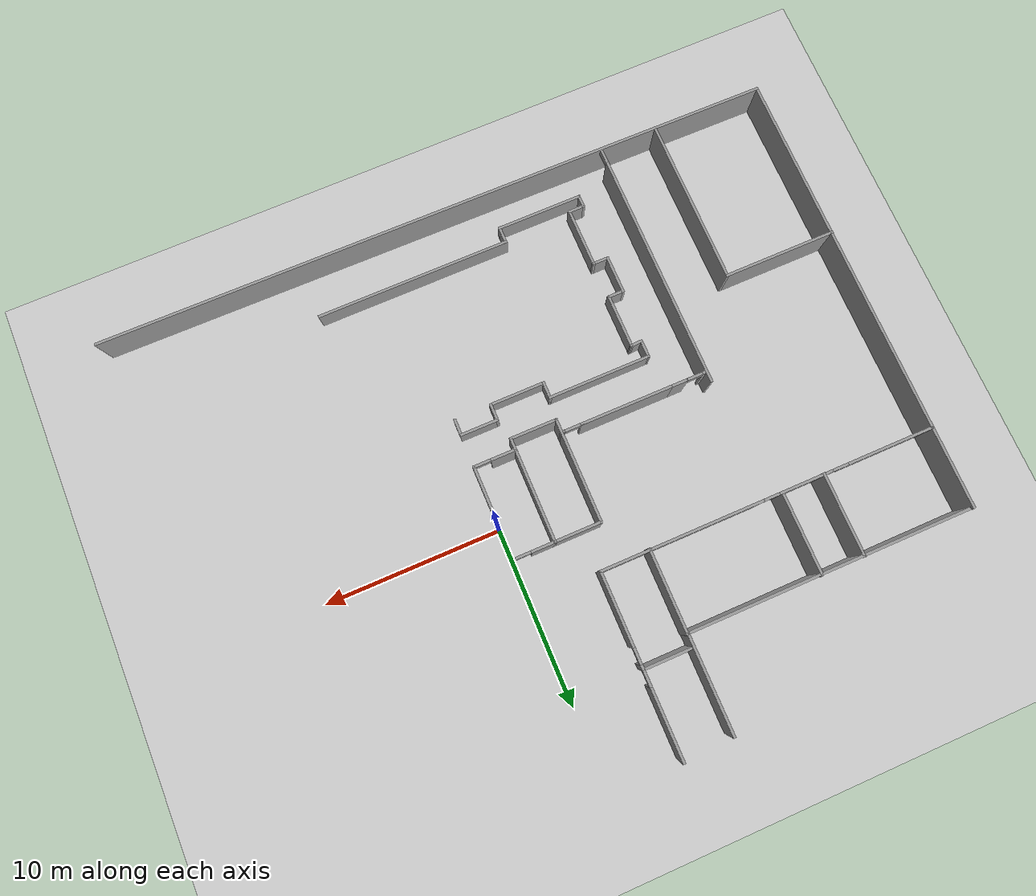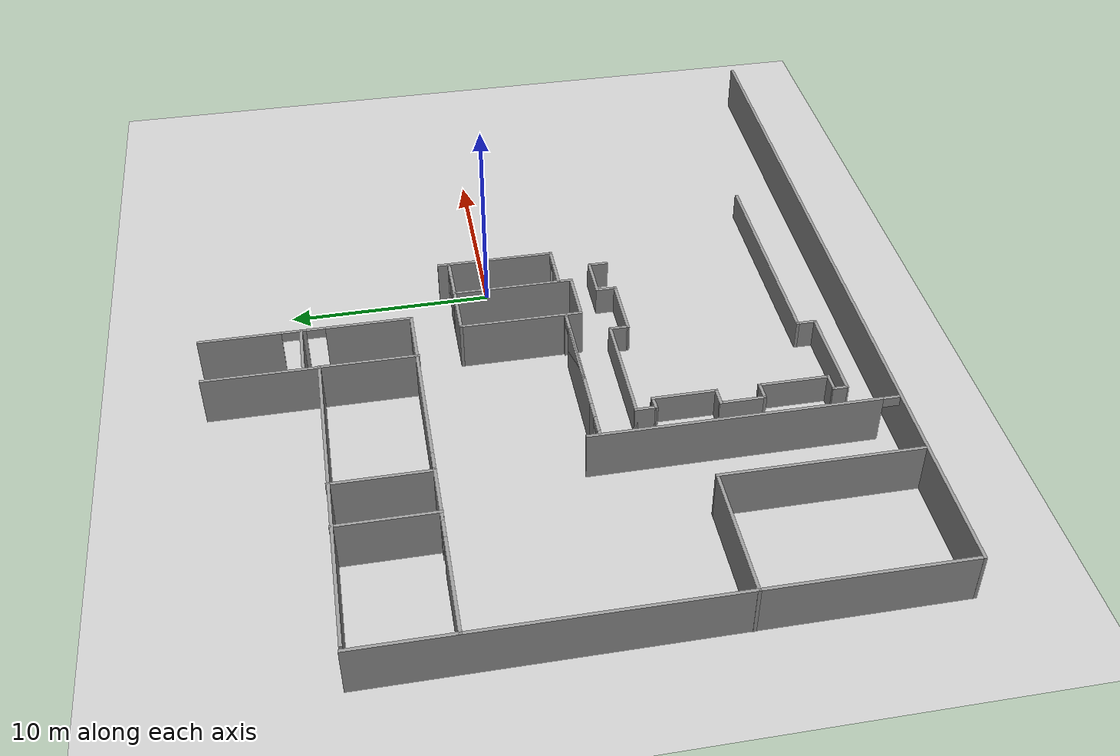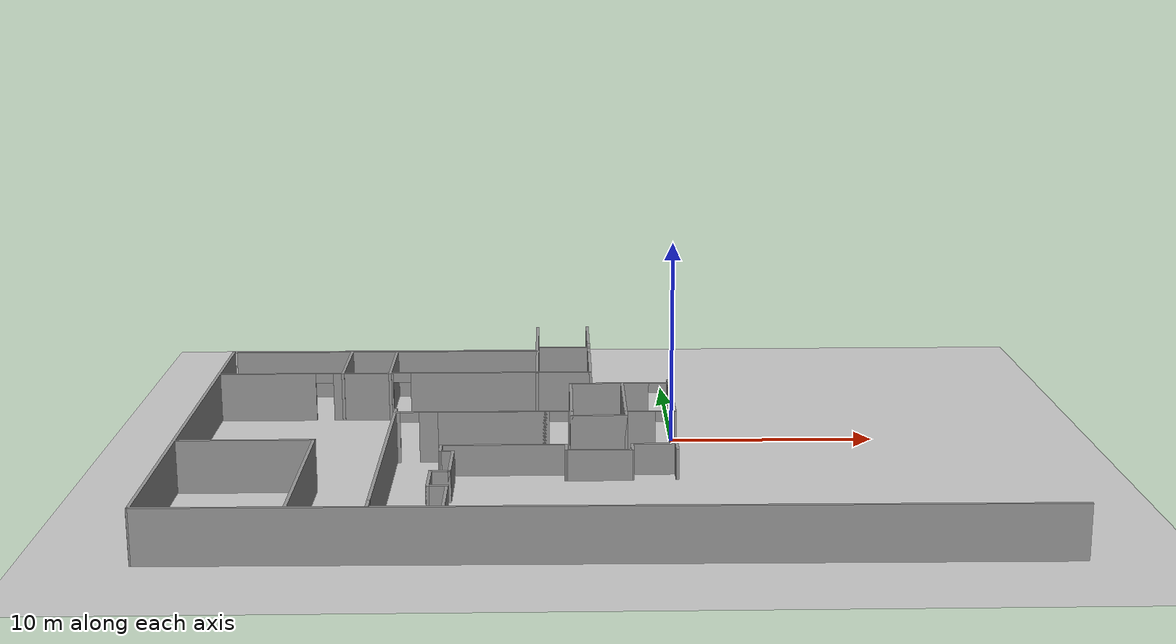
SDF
<sdf version="1.6">
 <world name="default">
  <model name="ground_plane">
   <static>1</static>
   <link name="link">
    <collision name="collision">
     <geometry><plane><normal>0 0 1</normal><size>100 100</size></plane></geometry>
     <surface><friction><ode><mu>100</mu><mu2>50</mu2></ode></friction></surface>
    </collision>
    <visual name="visual">
     <cast_shadows>0</cast_shadows>
     <geometry><plane><normal>0 0 1</normal><size>100 100</size></plane></geometry>
     <material>
      <script><uri>file://media/materials/scripts/gazebo.material</uri><name>Gazebo/Grey</name></script>
     </material>
    </visual>
   </link>
  </model>
  <model name="REPF">
   <pose>-1.32849 -1.57577 0 0 -0 0</pose>
   <link name="Wall_291">
    <collision name="Wall_291_Collision">
     <geometry><box><size>26 0.15 2.5</size></box></geometry>
     <pose>0 0 1.25 0 -0 0</pose>
    </collision>
    <visual name="Wall_291_Visual">
     <pose>0 0 1.25 0 -0 0</pose>
     <geometry><box><size>26 0.15 2.5</size></box></geometry>
     <material>
      <script><uri>file://media/materials/scripts/gazebo.material</uri><name>Gazebo/Grey</name></script>
      <ambient>1 1 1 1</ambient>
     </material>
    </visual>
    <pose>-21.7531 -2.59206 0 0 0 -1.5708</pose>
   </link>
   <link name="Wall_292">
    <collision name="Wall_292_Collision">
     <geometry><box><size>39.3304 0.15 2.5</size></box></geometry>
     <pose>0 0 1.25 0 -0 0</pose>
    </collision>
    <visual name="Wall_292_Visual">
     <pose>0 0 1.25 0 -0 0</pose>
     <geometry><box><size>39.3304 0.15 2.5</size></box></geometry>
     <material>
      <script><uri>file://media/materials/scripts/gazebo.material</uri><name>Gazebo/Grey</name></script>
      <ambient>1 1 1 1</ambient>
     </material>
    </visual>
    <pose>-2.16853 -15.6825 0 0 0 -0.008444</pose>
   </link>
   <link name="Wall_299">
    <collision name="Wall_299_Collision">
     <geometry><box><size>5.55237 0.15 2.5</size></box></geometry>
     <pose>0 0 1.25 0 -0 0</pose>
    </collision>
    <visual name="Wall_299_Visual">
     <pose>0 0 1.25 0 -0 0</pose>
     <geometry><box><size>5.55237 0.15 2.5</size></box></geometry>
     <material>
      <script><uri>file://media/materials/scripts/gazebo.material</uri><name>Gazebo/Grey</name></script>
      <ambient>1 1 1 1</ambient>
     </material>
    </visual>
    <pose>-5.42804 13.0009 0 0 0 -1.57043</pose>
   </link>
   <link name="Wall_300">
    <collision name="Wall_300_Collision">
     <geometry><box><size>16.25 0.15 2.5</size></box></geometry>
     <pose>0 0 1.25 0 -0 0</pose>
    </collision>
    <visual name="Wall_300_Visual">
     <pose>0 0 1.25 0 -0 0</pose>
     <geometry><box><size>16.25 0.15 2.5</size></box></geometry>
     <material>
      <script><uri>file://media/materials/scripts/gazebo.material</uri><name>Gazebo/Grey</name></script>
      <ambient>1 1 1 1</ambient>
     </material>
    </visual>
    <pose>-13.4469 10.2997 0 0 -0 3.14159</pose>
   </link>
   <link name="Wall_302">
    <pose>-2.62455 10.7985 0 0 0 -1.5708</pose>
    <visual name="Wall_302_Visual_0">
     <pose>-3.14213 0 1.25 0 -0 0</pose>
     <geometry><box><size>3.96575 0.15 2.5</size></box></geometry>
     <material>
      <script><uri>file://media/materials/scripts/gazebo.material</uri><name>Gazebo/Grey</name></script>
      <ambient>1 1 1 1</ambient>
     </material>
    </visual>
    <collision name="Wall_302_Collision_0">
     <geometry><box><size>3.96575 0.15 2.5</size></box></geometry>
     <pose>-3.14213 0 1.25 0 -0 0</pose>
    </collision>
    <visual name="Wall_302_Visual_1">
     <pose>-0.118157 0 1.25 0 -0 0</pose>
     <geometry><box><size>0.282192 0.15 2.5</size></box></geometry>
     <material>
      <script><uri>file://media/materials/scripts/gazebo.material</uri><name>Gazebo/Grey</name></script>
      <ambient>1 1 1 1</ambient>
     </material>
    </visual>
    <collision name="Wall_302_Collision_1">
     <geometry><box><size>0.282192 0.15 2.5</size></box></geometry>
     <pose>-0.118157 0 1.25 0 -0 0</pose>
    </collision>
    <visual name="Wall_302_Visual_2">
     <pose>3.02397 0 1.25 0 -0 0</pose>
     <geometry><box><size>4.20206 0.15 2.5</size></box></geometry>
     <material>
      <script><uri>file://media/materials/scripts/gazebo.material</uri><name>Gazebo/Grey</name></script>
      <ambient>1 1 1 1</ambient>
     </material>
    </visual>
    <collision name="Wall_302_Collision_2">
     <geometry><box><size>4.20206 0.15 2.5</size></box></geometry>
     <pose>3.02397 0 1.25 0 -0 0</pose>
    </collision>
    <visual name="Wall_302_Visual_3">
     <pose>-0.709253 0 2.25 0 -0 0</pose>
     <geometry><box><size>0.9 0.15 0.5</size></box></geometry>
     <material>
      <script><uri>file://media/materials/scripts/gazebo.material</uri><name>Gazebo/Grey</name></script>
      <ambient>1 1 1 1</ambient>
     </material>
    </visual>
    <collision name="Wall_302_Collision_3">
     <geometry><box><size>0.9 0.15 0.5</size></box></geometry>
     <pose>-0.709253 0 2.25 0 -0 0</pose>
    </collision>
    <visual name="Wall_302_Visual_4">
     <pose>0.472939 0 2.25 0 -0 0</pose>
     <geometry><box><size>0.9 0.15 0.5</size></box></geometry>
     <material>
      <script><uri>file://media/materials/scripts/gazebo.material</uri><name>Gazebo/Grey</name></script>
      <ambient>1 1 1 1</ambient>
     </material>
    </visual>
    <collision name="Wall_302_Collision_4">
     <geometry><box><size>0.9 0.15 0.5</size></box></geometry>
     <pose>0.472939 0 2.25 0 -0 0</pose>
    </collision>
   </link>
   <link name="Wall_303">
    <pose>-12.1746 5.74854 0 0 -0 3.14159</pose>
    <visual name="Wall_303_Visual_0">
     <pose>-4.94527 0 1.25 0 -0 0</pose>
     <geometry><box><size>9.35946 0.15 2.5</size></box></geometry>
     <material>
      <script><uri>file://media/materials/scripts/gazebo.material</uri><name>Gazebo/Grey</name></script>
      <ambient>1 1 1 1</ambient>
     </material>
    </visual>
    <collision name="Wall_303_Collision_0">
     <geometry><box><size>9.35946 0.15 2.5</size></box></geometry>
     <pose>-4.94527 0 1.25 0 -0 0</pose>
    </collision>
    <visual name="Wall_303_Visual_1">
     <pose>2.17509 0 1.25 0 -0 0</pose>
     <geometry><box><size>3.08126 0.15 2.5</size></box></geometry>
     <material>
      <script><uri>file://media/materials/scripts/gazebo.material</uri><name>Gazebo/Grey</name></script>
      <ambient>1 1 1 1</ambient>
     </material>
    </visual>
    <collision name="Wall_303_Collision_1">
     <geometry><box><size>3.08126 0.15 2.5</size></box></geometry>
     <pose>2.17509 0 1.25 0 -0 0</pose>
    </collision>
    <visual name="Wall_303_Visual_2">
     <pose>7.12036 0 1.25 0 -0 0</pose>
     <geometry><box><size>5.00928 0.15 2.5</size></box></geometry>
     <material>
      <script><uri>file://media/materials/scripts/gazebo.material</uri><name>Gazebo/Grey</name></script>
      <ambient>1 1 1 1</ambient>
     </material>
    </visual>
    <collision name="Wall_303_Collision_2">
     <geometry><box><size>5.00928 0.15 2.5</size></box></geometry>
     <pose>7.12036 0 1.25 0 -0 0</pose>
    </collision>
    <visual name="Wall_303_Visual_3">
     <pose>0.18446 0 2.25 0 -0 0</pose>
     <geometry><box><size>0.9 0.15 0.5</size></box></geometry>
     <material>
      <script><uri>file://media/materials/scripts/gazebo.material</uri><name>Gazebo/Grey</name></script>
      <ambient>1 1 1 1</ambient>
     </material>
    </visual>
    <collision name="Wall_303_Collision_3">
     <geometry><box><size>0.9 0.15 0.5</size></box></geometry>
     <pose>0.18446 0 2.25 0 -0 0</pose>
    </collision>
    <visual name="Wall_303_Visual_4">
     <pose>4.16572 0 2.25 0 -0 0</pose>
     <geometry><box><size>0.9 0.15 0.5</size></box></geometry>
     <material>
      <script><uri>file://media/materials/scripts/gazebo.material</uri><name>Gazebo/Grey</name></script>
      <ambient>1 1 1 1</ambient>
     </material>
    </visual>
    <collision name="Wall_303_Collision_4">
     <geometry><box><size>0.9 0.15 0.5</size></box></geometry>
     <pose>4.16572 0 2.25 0 -0 0</pose>
    </collision>
   </link>
   <link name="Wall_305">
    <collision name="Wall_305_Collision">
     <geometry><box><size>4.75 0.15 2.5</size></box></geometry>
     <pose>0 0 1.25 0 -0 0</pose>
    </collision>
    <visual name="Wall_305_Visual">
     <pose>0 0 1.25 0 -0 0</pose>
     <geometry><box><size>4.75 0.15 2.5</size></box></geometry>
     <material>
      <script><uri>file://media/materials/scripts/gazebo.material</uri><name>Gazebo/Grey</name></script>
      <ambient>1 1 1 1</ambient>
     </material>
    </visual>
    <pose>-5.39685 7.99971 0 0 0 -1.5708</pose>
   </link>
   <link name="Wall_307">
    <collision name="Wall_307_Collision">
     <geometry><box><size>2.75 0.15 2.5</size></box></geometry>
     <pose>0 0 1.25 0 -0 0</pose>
    </collision>
    <visual name="Wall_307_Visual">
     <pose>0 0 1.25 0 -0 0</pose>
     <geometry><box><size>2.75 0.15 2.5</size></box></geometry>
     <material>
      <script><uri>file://media/materials/scripts/gazebo.material</uri><name>Gazebo/Grey</name></script>
      <ambient>1 1 1 1</ambient>
     </material>
    </visual>
    <pose>-3.94634 11.0349 0 0 -0 0</pose>
   </link>
   <link name="Wall_331">
    <collision name="Wall_331_Collision">
     <geometry><box><size>6.5 0.15 2.5</size></box></geometry>
     <pose>0 0 1.25 0 -0 0</pose>
    </collision>
    <visual name="Wall_331_Visual">
     <pose>0 0 1.25 0 -0 0</pose>
     <geometry><box><size>6.5 0.15 2.5</size></box></geometry>
     <material>
      <script><uri>file://media/materials/scripts/gazebo.material</uri><name>Gazebo/Grey</name></script>
      <ambient>1 1 1 1</ambient>
     </material>
    </visual>
    <pose>-18.596 -6.09631 0 0 -0 0</pose>
   </link>
   <link name="Wall_332">
    <collision name="Wall_332_Collision">
     <geometry><box><size>9.5 0.15 2.5</size></box></geometry>
     <pose>0 0 1.25 0 -0 0</pose>
    </collision>
    <visual name="Wall_332_Visual">
     <pose>0 0 1.25 0 -0 0</pose>
     <geometry><box><size>9.5 0.15 2.5</size></box></geometry>
     <material>
      <script><uri>file://media/materials/scripts/gazebo.material</uri><name>Gazebo/Grey</name></script>
      <ambient>1 1 1 1</ambient>
     </material>
    </visual>
    <pose>-15.421 -10.7713 0 0 0 -1.5708</pose>
   </link>
   <link name="Wall_334">
    <pose>-12.1022 -8.27314 0 0 0 -1.5708</pose>
    <visual name="Wall_334_Visual_0">
     <pose>-0.398977 0 1.25 0 -0 0</pose>
     <geometry><box><size>13.702 0.15 2.5</size></box></geometry>
     <material>
      <script><uri>file://media/materials/scripts/gazebo.material</uri><name>Gazebo/Grey</name></script>
      <ambient>1 1 1 1</ambient>
     </material>
    </visual>
    <collision name="Wall_334_Collision_0">
     <geometry><box><size>13.702 0.15 2.5</size></box></geometry>
     <pose>-0.398977 0 1.25 0 -0 0</pose>
    </collision>
    <visual name="Wall_334_Visual_1">
     <pose>6.85102 0 2.25 0 -0 0</pose>
     <geometry><box><size>0.797955 0.15 0.5</size></box></geometry>
     <material>
      <script><uri>file://media/materials/scripts/gazebo.material</uri><name>Gazebo/Grey</name></script>
      <ambient>1 1 1 1</ambient>
     </material>
    </visual>
    <collision name="Wall_334_Collision_1">
     <geometry><box><size>0.797955 0.15 0.5</size></box></geometry>
     <pose>6.85102 0 2.25 0 -0 0</pose>
    </collision>
   </link>
   <link name="Wall_336">
    <pose>-7.83845 -1.65312 0 0 -0 0</pose>
    <visual name="Wall_336_Visual_0">
     <pose>-4.13254 0 1.25 0 -0 0</pose>
     <geometry><box><size>0.234928 0.15 2.5</size></box></geometry>
     <material>
      <script><uri>file://media/materials/scripts/gazebo.material</uri><name>Gazebo/Grey</name></script>
      <ambient>1 1 1 1</ambient>
     </material>
    </visual>
    <collision name="Wall_336_Collision_0">
     <geometry><box><size>0.234928 0.15 2.5</size></box></geometry>
     <pose>-4.13254 0 1.25 0 -0 0</pose>
    </collision>
    <visual name="Wall_336_Visual_1">
     <pose>-0.006322 0 1.25 0 -0 0</pose>
     <geometry><box><size>6.2175 0.15 2.5</size></box></geometry>
     <material>
      <script><uri>file://media/materials/scripts/gazebo.material</uri><name>Gazebo/Grey</name></script>
      <ambient>1 1 1 1</ambient>
     </material>
    </visual>
    <collision name="Wall_336_Collision_1">
     <geometry><box><size>6.2175 0.15 2.5</size></box></geometry>
     <pose>-0.006322 0 1.25 0 -0 0</pose>
    </collision>
    <visual name="Wall_336_Visual_2">
     <pose>0.440485 0 1.25 0 -0 0</pose>
     <geometry><box><size>5.32388 0.15 2.5</size></box></geometry>
     <material>
      <script><uri>file://media/materials/scripts/gazebo.material</uri><name>Gazebo/Grey</name></script>
      <ambient>1 1 1 1</ambient>
     </material>
    </visual>
    <collision name="Wall_336_Collision_2">
     <geometry><box><size>5.32388 0.15 2.5</size></box></geometry>
     <pose>0.440485 0 1.25 0 -0 0</pose>
    </collision>
    <visual name="Wall_336_Visual_3">
     <pose>4.12621 0 1.25 0 -0 0</pose>
     <geometry><box><size>0.247573 0.15 2.5</size></box></geometry>
     <material>
      <script><uri>file://media/materials/scripts/gazebo.material</uri><name>Gazebo/Grey</name></script>
      <ambient>1 1 1 1</ambient>
     </material>
    </visual>
    <collision name="Wall_336_Collision_3">
     <geometry><box><size>0.247573 0.15 2.5</size></box></geometry>
     <pose>4.12621 0 1.25 0 -0 0</pose>
    </collision>
    <visual name="Wall_336_Visual_4">
     <pose>-3.56826 0 2.25 0 -0 0</pose>
     <geometry><box><size>0.893616 0.15 0.5</size></box></geometry>
     <material>
      <script><uri>file://media/materials/scripts/gazebo.material</uri><name>Gazebo/Grey</name></script>
      <ambient>1 1 1 1</ambient>
     </material>
    </visual>
    <collision name="Wall_336_Collision_4">
     <geometry><box><size>0.893616 0.15 0.5</size></box></geometry>
     <pose>-3.56826 0 2.25 0 -0 0</pose>
    </collision>
    <visual name="Wall_336_Visual_5">
     <pose>3.55243 0 2.25 0 -0 0</pose>
     <geometry><box><size>0.9 0.15 0.5</size></box></geometry>
     <material>
      <script><uri>file://media/materials/scripts/gazebo.material</uri><name>Gazebo/Grey</name></script>
      <ambient>1 1 1 1</ambient>
     </material>
    </visual>
    <collision name="Wall_336_Collision_5">
     <geometry><box><size>0.9 0.15 0.5</size></box></geometry>
     <pose>3.55243 0 2.25 0 -0 0</pose>
    </collision>
    <visual name="Wall_336_Visual_6">
     <pose>3.55243 0 2.25 0 -0 0</pose>
     <geometry><box><size>0.9 0.15 0.5</size></box></geometry>
     <material>
      <script><uri>file://media/materials/scripts/gazebo.material</uri><name>Gazebo/Grey</name></script>
      <ambient>1 1 1 1</ambient>
     </material>
    </visual>
    <collision name="Wall_336_Collision_6">
     <geometry><box><size>0.9 0.15 0.5</size></box></geometry>
     <pose>3.55243 0 2.25 0 -0 0</pose>
    </collision>
   </link>
   <link name="Wall_338">
    <collision name="Wall_338_Collision">
     <geometry><box><size>6 0.15 2.5</size></box></geometry>
     <pose>0 0 1.25 0 -0 0</pose>
    </collision>
    <visual name="Wall_338_Visual">
     <pose>0 0 1.25 0 -0 0</pose>
     <geometry><box><size>6 0.15 2.5</size></box></geometry>
     <material>
      <script><uri>file://media/materials/scripts/gazebo.material</uri><name>Gazebo/Grey</name></script>
      <ambient>1 1 1 1</ambient>
     </material>
    </visual>
    <pose>-3.6668 0.527981 0 0 0 -1.5708</pose>
   </link>
   <link name="Wall_339">
    <collision name="Wall_339_Collision">
     <geometry><box><size>2.75 0.15 2.5</size></box></geometry>
     <pose>0 0 1.25 0 -0 0</pose>
    </collision>
    <visual name="Wall_339_Visual">
     <pose>0 0 1.25 0 -0 0</pose>
     <geometry><box><size>2.75 0.15 2.5</size></box></geometry>
     <material>
      <script><uri>file://media/materials/scripts/gazebo.material</uri><name>Gazebo/Grey</name></script>
      <ambient>1 1 1 1</ambient>
     </material>
    </visual>
    <pose>-2.3668 -2.39702 0 0 -0 0</pose>
   </link>
   <link name="Wall_340">
    <collision name="Wall_340_Collision">
     <geometry><box><size>6 0.15 2.5</size></box></geometry>
     <pose>0 0 1.25 0 -0 0</pose>
    </collision>
    <visual name="Wall_340_Visual">
     <pose>0 0 1.25 0 -0 0</pose>
     <geometry><box><size>6 0.15 2.5</size></box></geometry>
     <material>
      <script><uri>file://media/materials/scripts/gazebo.material</uri><name>Gazebo/Grey</name></script>
      <ambient>1 1 1 1</ambient>
     </material>
    </visual>
    <pose>-1.0668 0.527981 0 0 -0 1.5708</pose>
   </link>
   <link name="Wall_341">
    <collision name="Wall_341_Collision">
     <geometry><box><size>2.75 0.15 2.5</size></box></geometry>
     <pose>0 0 1.25 0 -0 0</pose>
    </collision>
    <visual name="Wall_341_Visual">
     <pose>0 0 1.25 0 -0 0</pose>
     <geometry><box><size>2.75 0.15 2.5</size></box></geometry>
     <material>
      <script><uri>file://media/materials/scripts/gazebo.material</uri><name>Gazebo/Grey</name></script>
      <ambient>1 1 1 1</ambient>
     </material>
    </visual>
    <pose>-2.3668 3.45298 0 0 -0 3.14159</pose>
   </link>
   <link name="Wall_343">
    <pose>0.108198 3.45298 0 0 -0 0</pose>
    <visual name="Wall_343_Visual_0">
     <pose>-0.544207 0 1.25 0 -0 0</pose>
     <geometry><box><size>1.41159 0.15 2.5</size></box></geometry>
     <material>
      <script><uri>file://media/materials/scripts/gazebo.material</uri><name>Gazebo/Grey</name></script>
      <ambient>1 1 1 1</ambient>
     </material>
    </visual>
    <collision name="Wall_343_Collision_0">
     <geometry><box><size>1.41159 0.15 2.5</size></box></geometry>
     <pose>-0.544207 0 1.25 0 -0 0</pose>
    </collision>
    <visual name="Wall_343_Visual_1">
     <pose>1.15579 0 1.25 0 -0 0</pose>
     <geometry><box><size>0.188414 0.15 2.5</size></box></geometry>
     <material>
      <script><uri>file://media/materials/scripts/gazebo.material</uri><name>Gazebo/Grey</name></script>
      <ambient>1 1 1 1</ambient>
     </material>
    </visual>
    <collision name="Wall_343_Collision_1">
     <geometry><box><size>0.188414 0.15 2.5</size></box></geometry>
     <pose>1.15579 0 1.25 0 -0 0</pose>
    </collision>
    <visual name="Wall_343_Visual_2">
     <pose>0.611586 0 2.25 0 -0 0</pose>
     <geometry><box><size>0.9 0.15 0.5</size></box></geometry>
     <material>
      <script><uri>file://media/materials/scripts/gazebo.material</uri><name>Gazebo/Grey</name></script>
      <ambient>1 1 1 1</ambient>
     </material>
    </visual>
    <collision name="Wall_343_Collision_2">
     <geometry><box><size>0.9 0.15 0.5</size></box></geometry>
     <pose>0.611586 0 2.25 0 -0 0</pose>
    </collision>
   </link>
   <link name="Wall_344">
    <collision name="Wall_344_Collision">
     <geometry><box><size>5.25 0.15 2.5</size></box></geometry>
     <pose>0 0 1.25 0 -0 0</pose>
    </collision>
    <visual name="Wall_344_Visual">
     <pose>0 0 1.25 0 -0 0</pose>
     <geometry><box><size>5.25 0.15 2.5</size></box></geometry>
     <material>
      <script><uri>file://media/materials/scripts/gazebo.material</uri><name>Gazebo/Grey</name></script>
      <ambient>1 1 1 1</ambient>
     </material>
    </visual>
    <pose>1.2832 0.902981 0 0 0 -1.5708</pose>
   </link>
   <link name="Wall_349">
    <pose>0.116601 -1.76431 0 0 -0 0</pose>
    <visual name="Wall_349_Visual_0">
     <pose>-0.510841 0 1.25 0 -0 0</pose>
     <geometry><box><size>1.47832 0.15 2.5</size></box></geometry>
     <material>
      <script><uri>file://media/materials/scripts/gazebo.material</uri><name>Gazebo/Grey</name></script>
      <ambient>1 1 1 1</ambient>
     </material>
    </visual>
    <collision name="Wall_349_Collision_0">
     <geometry><box><size>1.47832 0.15 2.5</size></box></geometry>
     <pose>-0.510841 0 1.25 0 -0 0</pose>
    </collision>
    <visual name="Wall_349_Visual_1">
     <pose>1.18916 0 1.25 0 -0 0</pose>
     <geometry><box><size>0.121682 0.15 2.5</size></box></geometry>
     <material>
      <script><uri>file://media/materials/scripts/gazebo.material</uri><name>Gazebo/Grey</name></script>
      <ambient>1 1 1 1</ambient>
     </material>
    </visual>
    <collision name="Wall_349_Collision_1">
     <geometry><box><size>0.121682 0.15 2.5</size></box></geometry>
     <pose>1.18916 0 1.25 0 -0 0</pose>
    </collision>
    <visual name="Wall_349_Visual_2">
     <pose>0.678318 0 2.25 0 -0 0</pose>
     <geometry><box><size>0.9 0.15 0.5</size></box></geometry>
     <material>
      <script><uri>file://media/materials/scripts/gazebo.material</uri><name>Gazebo/Grey</name></script>
      <ambient>1 1 1 1</ambient>
     </material>
    </visual>
    <collision name="Wall_349_Collision_2">
     <geometry><box><size>0.9 0.15 0.5</size></box></geometry>
     <pose>0.678318 0 2.25 0 -0 0</pose>
    </collision>
   </link>
   <link name="Wall_356">
    <collision name="Wall_356_Collision">
     <geometry><box><size>11.25 0.15 1.5</size></box></geometry>
     <pose>0 0 0.75 0 -0 0</pose>
    </collision>
    <visual name="Wall_356_Visual">
     <pose>0 0 0.75 0 -0 0</pose>
     <geometry><box><size>11.25 0.15 1.5</size></box></geometry>
     <material>
      <script><uri>file://media/materials/scripts/gazebo.material</uri><name>Gazebo/Grey</name></script>
      <ambient>1 1 1 1</ambient>
     </material>
    </visual>
    <pose>0.352601 -12.9741 0 0 -0 3.14159</pose>
   </link>
   <link name="Wall_357">
    <collision name="Wall_357_Collision">
     <geometry><box><size>1.031 0.15 1.5</size></box></geometry>
     <pose>0 0 0.75 0 -0 0</pose>
    </collision>
    <visual name="Wall_357_Visual">
     <pose>0 0 0.75 0 -0 0</pose>
     <geometry><box><size>1.031 0.15 1.5</size></box></geometry>
     <material>
      <script><uri>file://media/materials/scripts/gazebo.material</uri><name>Gazebo/Grey</name></script>
      <ambient>1 1 1 1</ambient>
     </material>
    </visual>
    <pose>-5.1974 -13.4146 0 0 0 -1.5708</pose>
   </link>
   <link name="Wall_358">
    <collision name="Wall_358_Collision">
     <geometry><box><size>5 0.15 1.5</size></box></geometry>
     <pose>0 0 0.75 0 -0 0</pose>
    </collision>
    <visual name="Wall_358_Visual">
     <pose>0 0 0.75 0 -0 0</pose>
     <geometry><box><size>5 0.15 1.5</size></box></geometry>
     <material>
      <script><uri>file://media/materials/scripts/gazebo.material</uri><name>Gazebo/Grey</name></script>
      <ambient>1 1 1 1</ambient>
     </material>
    </visual>
    <pose>-7.6224 -13.8546 0 0 -0 3.14139</pose>
   </link>
   <link name="Wall_359">
    <collision name="Wall_359_Collision">
     <geometry><box><size>0.780457 0.15 1.5</size></box></geometry>
     <pose>0 0 0.75 0 -0 0</pose>
    </collision>
    <visual name="Wall_359_Visual">
     <pose>0 0 0.75 0 -0 0</pose>
     <geometry><box><size>0.780457 0.15 1.5</size></box></geometry>
     <material>
      <script><uri>file://media/materials/scripts/gazebo.material</uri><name>Gazebo/Grey</name></script>
      <ambient>1 1 1 1</ambient>
     </material>
    </visual>
    <pose>-10.0474 -13.5391 0 0 -0 1.5708</pose>
   </link>
   <link name="Wall_360">
    <collision name="Wall_360_Collision">
     <geometry><box><size>1 0.15 1.5</size></box></geometry>
     <pose>0 0 0.75 0 -0 0</pose>
    </collision>
    <visual name="Wall_360_Visual">
     <pose>0 0 0.75 0 -0 0</pose>
     <geometry><box><size>1 0.15 1.5</size></box></geometry>
     <material>
      <script><uri>file://media/materials/scripts/gazebo.material</uri><name>Gazebo/Grey</name></script>
      <ambient>1 1 1 1</ambient>
     </material>
    </visual>
    <pose>-9.6224 -13.2241 0 0 -0 0</pose>
   </link>
   <link name="Wall_361">
    <collision name="Wall_361_Collision">
     <geometry><box><size>3.5 0.15 1.5</size></box></geometry>
     <pose>0 0 0.75 0 -0 0</pose>
    </collision>
    <visual name="Wall_361_Visual">
     <pose>0 0 0.75 0 -0 0</pose>
     <geometry><box><size>3.5 0.15 1.5</size></box></geometry>
     <material>
      <script><uri>file://media/materials/scripts/gazebo.material</uri><name>Gazebo/Grey</name></script>
      <ambient>1 1 1 1</ambient>
     </material>
    </visual>
    <pose>-9.1974 -11.5491 0 0 -0 1.5708</pose>
   </link>
   <link name="Wall_362">
    <collision name="Wall_362_Collision">
     <geometry><box><size>1 0.15 1.5</size></box></geometry>
     <pose>0 0 0.75 0 -0 0</pose>
    </collision>
    <visual name="Wall_362_Visual">
     <pose>0 0 0.75 0 -0 0</pose>
     <geometry><box><size>1 0.15 1.5</size></box></geometry>
     <material>
      <script><uri>file://media/materials/scripts/gazebo.material</uri><name>Gazebo/Grey</name></script>
      <ambient>1 1 1 1</ambient>
     </material>
    </visual>
    <pose>-9.6224 -9.87412 0 0 -0 3.14159</pose>
   </link>
   <link name="Wall_363">
    <collision name="Wall_363_Collision">
     <geometry><box><size>2.25 0.15 1.5</size></box></geometry>
     <pose>0 0 0.75 0 -0 0</pose>
    </collision>
    <visual name="Wall_363_Visual">
     <pose>0 0 0.75 0 -0 0</pose>
     <geometry><box><size>2.25 0.15 1.5</size></box></geometry>
     <material>
      <script><uri>file://media/materials/scripts/gazebo.material</uri><name>Gazebo/Grey</name></script>
      <ambient>1 1 1 1</ambient>
     </material>
    </visual>
    <pose>-10.0474 -8.82412 0 0 -0 1.5708</pose>
   </link>
   <link name="Wall_364">
    <collision name="Wall_364_Collision">
     <geometry><box><size>1 0.15 1.5</size></box></geometry>
     <pose>0 0 0.75 0 -0 0</pose>
    </collision>
    <visual name="Wall_364_Visual">
     <pose>0 0 0.75 0 -0 0</pose>
     <geometry><box><size>1 0.15 1.5</size></box></geometry>
     <material>
      <script><uri>file://media/materials/scripts/gazebo.material</uri><name>Gazebo/Grey</name></script>
      <ambient>1 1 1 1</ambient>
     </material>
    </visual>
    <pose>-9.6224 -7.77412 0 0 -0 0</pose>
   </link>
   <link name="Wall_365">
    <collision name="Wall_365_Collision">
     <geometry><box><size>3.188 0.15 1.5</size></box></geometry>
     <pose>0 0 0.75 0 -0 0</pose>
    </collision>
    <visual name="Wall_365_Visual">
     <pose>0 0 0.75 0 -0 0</pose>
     <geometry><box><size>3.188 0.15 1.5</size></box></geometry>
     <material>
      <script><uri>file://media/materials/scripts/gazebo.material</uri><name>Gazebo/Grey</name></script>
      <ambient>1 1 1 1</ambient>
     </material>
    </visual>
    <pose>-9.1974 -6.25512 0 0 -0 1.5708</pose>
   </link>
   <link name="Wall_366">
    <collision name="Wall_366_Collision">
     <geometry><box><size>0.750001 0.15 1.5</size></box></geometry>
     <pose>0 0 0.75 0 -0 0</pose>
    </collision>
    <visual name="Wall_366_Visual">
     <pose>0 0 0.75 0 -0 0</pose>
     <geometry><box><size>0.750001 0.15 1.5</size></box></geometry>
     <material>
      <script><uri>file://media/materials/scripts/gazebo.material</uri><name>Gazebo/Grey</name></script>
      <ambient>1 1 1 1</ambient>
     </material>
    </visual>
    <pose>-9.4974 -4.75112 0 0 0 -3.09163</pose>
   </link>
   <link name="Wall_367">
    <collision name="Wall_367_Collision">
     <geometry><box><size>1.092 0.15 1.5</size></box></geometry>
     <pose>0 0 0.75 0 -0 0</pose>
    </collision>
    <visual name="Wall_367_Visual">
     <pose>0 0 0.75 0 -0 0</pose>
     <geometry><box><size>1.092 0.15 1.5</size></box></geometry>
     <material>
      <script><uri>file://media/materials/scripts/gazebo.material</uri><name>Gazebo/Grey</name></script>
      <ambient>1 1 1 1</ambient>
     </material>
    </visual>
    <pose>-9.7974 -4.29512 0 0 -0 1.5708</pose>
   </link>
   <link name="Wall_368">
    <collision name="Wall_368_Collision">
     <geometry><box><size>6 0.15 1.5</size></box></geometry>
     <pose>0 0 0.75 0 -0 0</pose>
    </collision>
    <visual name="Wall_368_Visual">
     <pose>0 0 0.75 0 -0 0</pose>
     <geometry><box><size>6 0.15 1.5</size></box></geometry>
     <material>
      <script><uri>file://media/materials/scripts/gazebo.material</uri><name>Gazebo/Grey</name></script>
      <ambient>1 1 1 1</ambient>
     </material>
    </visual>
    <pose>-6.8724 -3.82412 0 0 -0 0</pose>
   </link>
   <link name="Wall_369">
    <collision name="Wall_369_Collision">
     <geometry><box><size>1.031 0.15 1.5</size></box></geometry>
     <pose>0 0 0.75 0 -0 0</pose>
    </collision>
    <visual name="Wall_369_Visual">
     <pose>0 0 0.75 0 -0 0</pose>
     <geometry><box><size>1.031 0.15 1.5</size></box></geometry>
     <material>
      <script><uri>file://media/materials/scripts/gazebo.material</uri><name>Gazebo/Grey</name></script>
      <ambient>1 1 1 1</ambient>
     </material>
    </visual>
    <pose>-3.9474 -4.26462 0 0 0 -1.5708</pose>
   </link>
   <link name="Wall_370">
    <collision name="Wall_370_Collision">
     <geometry><box><size>3.25 0.15 1.5</size></box></geometry>
     <pose>0 0 0.75 0 -0 0</pose>
    </collision>
    <visual name="Wall_370_Visual">
     <pose>0 0 0.75 0 -0 0</pose>
     <geometry><box><size>3.25 0.15 1.5</size></box></geometry>
     <material>
      <script><uri>file://media/materials/scripts/gazebo.material</uri><name>Gazebo/Grey</name></script>
      <ambient>1 1 1 1</ambient>
     </material>
    </visual>
    <pose>-2.3974 -4.70462 0 0 -0 0.000323</pose>
   </link>
   <link name="Wall_371">
    <collision name="Wall_371_Collision">
     <geometry><box><size>1.061 0.15 1.5</size></box></geometry>
     <pose>0 0 0.75 0 -0 0</pose>
    </collision>
    <visual name="Wall_371_Visual">
     <pose>0 0 0.75 0 -0 0</pose>
     <geometry><box><size>1.061 0.15 1.5</size></box></geometry>
     <material>
      <script><uri>file://media/materials/scripts/gazebo.material</uri><name>Gazebo/Grey</name></script>
      <ambient>1 1 1 1</ambient>
     </material>
    </visual>
    <pose>-0.847399 -4.24862 0 0 -0 1.5708</pose>
   </link>
   <link name="Wall_372">
    <collision name="Wall_372_Collision">
     <geometry><box><size>2.25 0.15 1.5</size></box></geometry>
     <pose>0 0 0.75 0 -0 0</pose>
    </collision>
    <visual name="Wall_372_Visual">
     <pose>0 0 0.75 0 -0 0</pose>
     <geometry><box><size>2.25 0.15 1.5</size></box></geometry>
     <material>
      <script><uri>file://media/materials/scripts/gazebo.material</uri><name>Gazebo/Grey</name></script>
      <ambient>1 1 1 1</ambient>
     </material>
    </visual>
    <pose>0.202601 -3.79312 0 0 -0 0</pose>
   </link>
   <link name="Wall_373">
    <collision name="Wall_373_Collision">
     <geometry><box><size>1.03054 0.15 1.5</size></box></geometry>
     <pose>0 0 0.75 0 -0 0</pose>
    </collision>
    <visual name="Wall_373_Visual">
     <pose>0 0 0.75 0 -0 0</pose>
     <geometry><box><size>1.03054 0.15 1.5</size></box></geometry>
     <material>
      <script><uri>file://media/materials/scripts/gazebo.material</uri><name>Gazebo/Grey</name></script>
      <ambient>1 1 1 1</ambient>
     </material>
    </visual>
    <pose>1.2526 -4.23362 0 0 0 -1.5708</pose>
   </link>
   <link name="Wall_387">
    <collision name="Wall_387_Collision">
     <geometry><box><size>0.65 0.15 2.5</size></box></geometry>
     <pose>0 0 1.25 0 -0 0</pose>
    </collision>
    <visual name="Wall_387_Visual">
     <pose>0 0 1.25 0 -0 0</pose>
     <geometry><box><size>0.65 0.15 2.5</size></box></geometry>
     <material>
      <script><uri>file://media/materials/scripts/gazebo.material</uri><name>Gazebo/Grey</name></script>
      <ambient>1 1 1 1</ambient>
     </material>
    </visual>
    <pose>1.2832 3.70298 0 0 0 -1.5708</pose>
   </link>
   <link name="Wall_389">
    <collision name="Wall_389_Collision">
     <geometry><box><size>4.75 0.15 2.5</size></box></geometry>
     <pose>0 0 1.25 0 -0 0</pose>
    </collision>
    <visual name="Wall_389_Visual">
     <pose>0 0 1.25 0 -0 0</pose>
     <geometry><box><size>4.75 0.15 2.5</size></box></geometry>
     <material>
      <script><uri>file://media/materials/scripts/gazebo.material</uri><name>Gazebo/Grey</name></script>
      <ambient>1 1 1 1</ambient>
     </material>
    </visual>
    <pose>-15.3914 8.02882 0 0 0 -1.5708</pose>
   </link>
   <link name="Wall_391">
    <collision name="Wall_391_Collision">
     <geometry><box><size>4.75 0.15 2.5</size></box></geometry>
     <pose>0 0 1.25 0 -0 0</pose>
    </collision>
    <visual name="Wall_391_Visual">
     <pose>0 0 1.25 0 -0 0</pose>
     <geometry><box><size>4.75 0.15 2.5</size></box></geometry>
     <material>
      <script><uri>file://media/materials/scripts/gazebo.material</uri><name>Gazebo/Grey</name></script>
      <ambient>1 1 1 1</ambient>
     </material>
    </visual>
    <pose>-12.9675 8.04082 0 0 0 -1.5708</pose>
   </link>
   <static>1</static>
  </model>
 </world>
</sdf>
